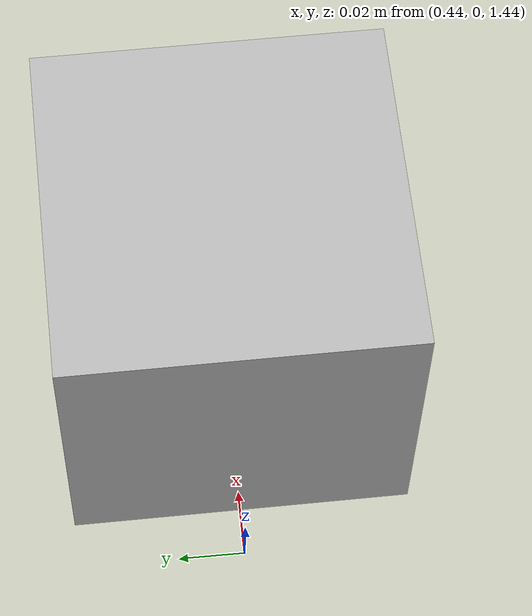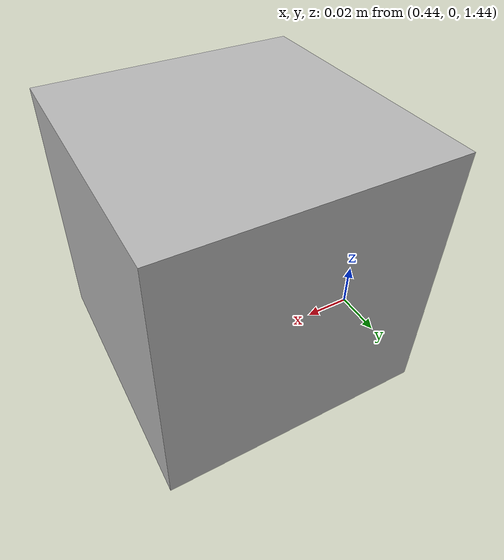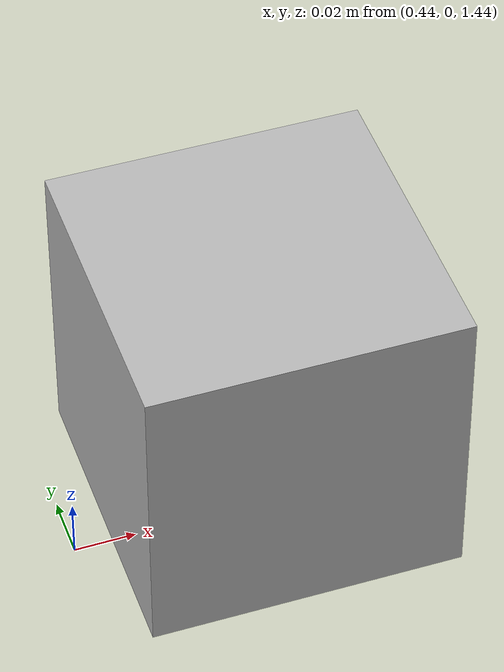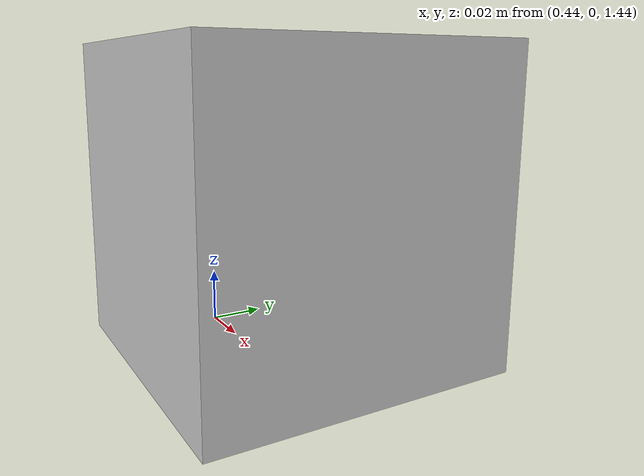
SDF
<?xml version="1.0"?>
<sdf version="1.9">
  <model name="topdown_camera">
    <static>true</static>
    <pose>0.5 0 1.5 0 1.57 0</pose>
    <link name="camera_link">
      <sensor name="topdown_camera" type="camera">
        <always_on>1</always_on>
        <update_rate>30</update_rate>
        <visualize>true</visualize>
        <camera>
          <horizontal_fov>1.5708</horizontal_fov>
          <image>
            <width>1280</width>
            <height>720</height>
            <format>R8G8B8</format>
          </image>
          <clip>
            <near>0.1</near>
            <far>100</far>
          </clip>
        </camera>
      </sensor>
      <visual name="visual">
        <geometry>
          <box>
            <size>0.1 0.1 0.1</size>
          </box>
        </geometry>
      </visual>
    </link>
  </model>
</sdf>
